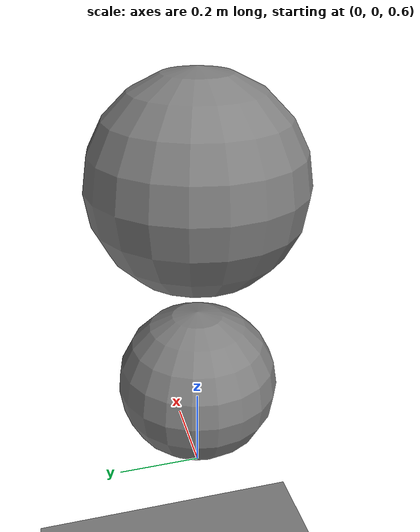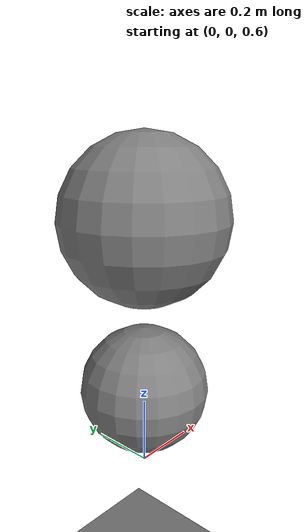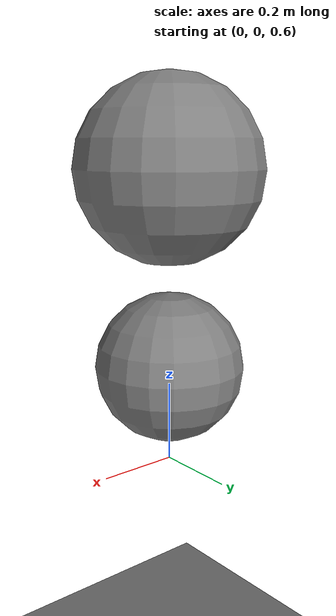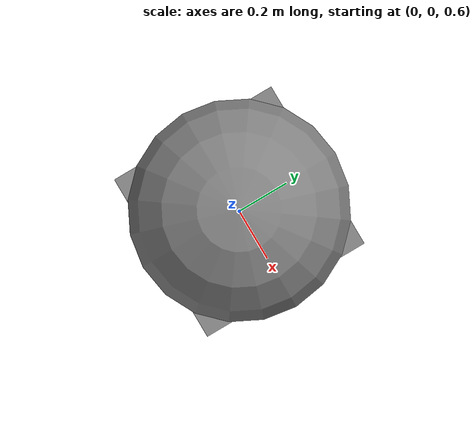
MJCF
<mujoco model="tree_chain_contact">
  <compiler angle="radian"/>
  <option timestep="0.002" gravity="0 0 -9.81"
          integrator="Euler" solver="Newton" cone="pyramidal" iterations="20"/>

  <worldbody>
    <geom name="ground" type="plane" size="5 5 0.1" friction="0.6"/>

    <body name="root" pos="0 0 1.35">
      <freejoint name="root_free"/>
      <inertial pos="0 0 0" mass="1.1" diaginertia="0.08 0.09 0.1"/>
      <geom name="root_geom" type="sphere" size="0.24" friction="0.6"/>

      <body name="upper" pos="0 0 -0.5">
        <joint name="upper_hinge" type="hinge" axis="0 1 0" pos="0 0 0.25"/>
        <inertial pos="0 0 0" mass="0.8" diaginertia="0.025 0.03 0.02"/>
        <geom name="upper_geom" type="sphere" size="0.19" friction="0.6"/>
      </body>
    </body>
  </worldbody>
</mujoco>
